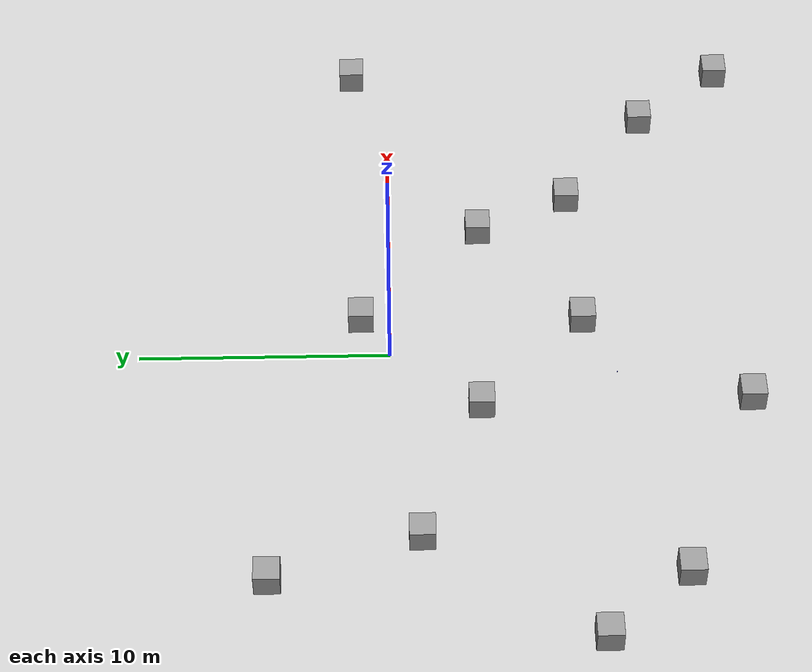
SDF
<sdf version="1.7">
 <world name="my_world">
  <model name="ground_plane">
   <static>1</static>
   <link name="link">
    <collision name="collision">
     <geometry><plane><normal>0 0 1</normal><size>100 100</size></plane></geometry>
     <surface>
      <contact><collide_bitmask>65535</collide_bitmask></contact>
      <friction><ode><mu>100</mu><mu2>50</mu2></ode></friction>
     </surface>
    </collision>
    <visual name="visual">
     <cast_shadows>0</cast_shadows>
     <geometry><plane><normal>0 0 1</normal><size>100 100</size></plane></geometry>
     <material>
      <script><uri>file://media/materials/scripts/gazebo.material</uri><name>Gazebo/Grey</name></script>
     </material>
    </visual>
   </link>
  </model>
  <model name="blue_cube_5">
   <pose>-1 -9 0.015 -2.2e-05 3e-06 0</pose>
   <link name="link">
    <inertial>
     <mass>0.005</mass>
     <inertia><ixx>1</ixx><ixy>0</ixy><ixz>0</ixz><iyy>1</iyy><iyz>0</iyz><izz>1</izz></inertia>
    </inertial>
    <collision name="collision">
     <geometry><box><size>0.03 0.03 0.03</size></box></geometry>
     <surface>
      <contact>
       <ode>
        <soft_cfm>0.001</soft_cfm>
        <soft_erp>0.2</soft_erp>
        <max_vel>0.1</max_vel>
        <min_depth>0.001</min_depth>
       </ode>
      </contact>
      <friction><ode><mu>0.01</mu><mu2>0.01</mu2></ode></friction>
     </surface>
    </collision>
    <visual name="visual">
     <geometry><box><size>0.03 0.03 0.03</size></box></geometry>
     <material><ambient>0 0 1 1</ambient><diffuse>0 0 1 1</diffuse></material>
    </visual>
   </link>
  </model>
  <model name="Untitled">
   <link name="link_0">
    <inertial>
     <mass>1</mass>
     <inertia>
      <ixx>0.166667</ixx>
      <ixy>0</ixy>
      <ixz>0</ixz>
      <iyy>0.166667</iyy>
      <iyz>0</iyz>
      <izz>0.166667</izz>
     </inertia>
    </inertial>
    <pose>-11.7361 10.376 0 0 -0 0</pose>
    <visual name="visual">
     <geometry><box><size>1 1 1</size></box></geometry>
     <material>
      <lighting>1</lighting>
      <script><uri>file://media/materials/scripts/gazebo.material</uri><name>Gazebo/Grey</name></script>
      <shader type="pixel"/>
     </material>
    </visual>
    <collision name="collision">
     <geometry><box><size>1 1 1</size></box></geometry>
     <surface>
      <friction>
       <ode><mu>1</mu><mu2>1</mu2><fdir1>0 0 0</fdir1><slip1>0</slip1><slip2>0</slip2></ode>
       <torsional>
        <coefficient>1</coefficient>
        <patch_radius>0</patch_radius>
        <surface_radius>0</surface_radius>
        <use_patch_radius>1</use_patch_radius>
        <ode><slip>0</slip></ode>
       </torsional>
      </friction>
      <bounce><restitution_coefficient>0</restitution_coefficient><threshold>1e+06</threshold></bounce>
      <contact>
       <collide_without_contact>0</collide_without_contact>
       <collide_without_contact_bitmask>1</collide_without_contact_bitmask>
       <collide_bitmask>1</collide_bitmask>
       <ode>
        <soft_cfm>0</soft_cfm>
        <soft_erp>0.2</soft_erp>
        <kp>1e+13</kp>
        <kd>1</kd>
        <max_vel>0.01</max_vel>
        <min_depth>0</min_depth>
       </ode>
       <bullet>
        <split_impulse>1</split_impulse>
        <split_impulse_penetration_threshold>-0.01</split_impulse_penetration_threshold>
        <soft_cfm>0</soft_cfm>
        <soft_erp>0.2</soft_erp>
        <kp>1e+13</kp>
        <kd>1</kd>
       </bullet>
      </contact>
     </surface>
    </collision>
   </link>
   <link name="link_1">
    <inertial>
     <mass>1</mass>
     <inertia>
      <ixx>0.166667</ixx>
      <ixy>0</ixy>
      <ixz>0</ixz>
      <iyy>0.166667</iyy>
      <iyz>0</iyz>
      <izz>0.166667</izz>
     </inertia>
    </inertial>
    <pose>-9.86873 4.59948 0 0 -0 0</pose>
    <visual name="visual">
     <geometry><box><size>1 1 1</size></box></geometry>
     <material>
      <lighting>1</lighting>
      <script><uri>file://media/materials/scripts/gazebo.material</uri><name>Gazebo/Grey</name></script>
      <shader type="pixel"/>
     </material>
    </visual>
    <collision name="collision">
     <geometry><box><size>1 1 1</size></box></geometry>
     <surface>
      <friction>
       <ode><mu>1</mu><mu2>1</mu2><fdir1>0 0 0</fdir1><slip1>0</slip1><slip2>0</slip2></ode>
       <torsional>
        <coefficient>1</coefficient>
        <patch_radius>0</patch_radius>
        <surface_radius>0</surface_radius>
        <use_patch_radius>1</use_patch_radius>
        <ode><slip>0</slip></ode>
       </torsional>
      </friction>
      <bounce><restitution_coefficient>0</restitution_coefficient><threshold>1e+06</threshold></bounce>
      <contact>
       <collide_without_contact>0</collide_without_contact>
       <collide_without_contact_bitmask>1</collide_without_contact_bitmask>
       <collide_bitmask>1</collide_bitmask>
       <ode>
        <soft_cfm>0</soft_cfm>
        <soft_erp>0.2</soft_erp>
        <kp>1e+13</kp>
        <kd>1</kd>
        <max_vel>0.01</max_vel>
        <min_depth>0</min_depth>
       </ode>
       <bullet>
        <split_impulse>1</split_impulse>
        <split_impulse_penetration_threshold>-0.01</split_impulse_penetration_threshold>
        <soft_cfm>0</soft_cfm>
        <soft_erp>0.2</soft_erp>
        <kp>1e+13</kp>
        <kd>1</kd>
       </bullet>
      </contact>
     </surface>
    </collision>
   </link>
   <link name="link_10">
    <inertial>
     <mass>1</mass>
     <inertia>
      <ixx>0.166667</ixx>
      <ixy>0</ixy>
      <ixz>0</ixz>
      <iyy>0.166667</iyy>
      <iyz>0</iyz>
      <izz>0.166667</izz>
     </inertia>
    </inertial>
    <pose>11.7248 -5.10078 0 0 -0 0</pose>
    <visual name="visual">
     <geometry><box><size>1 1 1</size></box></geometry>
     <material>
      <lighting>1</lighting>
      <script><uri>file://media/materials/scripts/gazebo.material</uri><name>Gazebo/Grey</name></script>
      <shader type="pixel"/>
     </material>
    </visual>
    <collision name="collision">
     <geometry><box><size>1 1 1</size></box></geometry>
     <surface>
      <friction>
       <ode><mu>1</mu><mu2>1</mu2><fdir1>0 0 0</fdir1><slip1>0</slip1><slip2>0</slip2></ode>
       <torsional>
        <coefficient>1</coefficient>
        <patch_radius>0</patch_radius>
        <surface_radius>0</surface_radius>
        <use_patch_radius>1</use_patch_radius>
        <ode><slip>0</slip></ode>
       </torsional>
      </friction>
      <bounce><restitution_coefficient>0</restitution_coefficient><threshold>1e+06</threshold></bounce>
      <contact>
       <collide_without_contact>0</collide_without_contact>
       <collide_without_contact_bitmask>1</collide_without_contact_bitmask>
       <collide_bitmask>1</collide_bitmask>
       <ode>
        <soft_cfm>0</soft_cfm>
        <soft_erp>0.2</soft_erp>
        <kp>1e+13</kp>
        <kd>1</kd>
        <max_vel>0.01</max_vel>
        <min_depth>0</min_depth>
       </ode>
       <bullet>
        <split_impulse>1</split_impulse>
        <split_impulse_penetration_threshold>-0.01</split_impulse_penetration_threshold>
        <soft_cfm>0</soft_cfm>
        <soft_erp>0.2</soft_erp>
        <kp>1e+13</kp>
        <kd>1</kd>
       </bullet>
      </contact>
     </surface>
    </collision>
   </link>
   <link name="link_11">
    <inertial>
     <mass>1</mass>
     <inertia>
      <ixx>0.166667</ixx>
      <ixy>0</ixy>
      <ixz>0</ixz>
      <iyy>0.166667</iyy>
      <iyz>0</iyz>
      <izz>0.166667</izz>
     </inertia>
    </inertial>
    <pose>-3.47257 -8.45059 0 0 -0 0</pose>
    <visual name="visual">
     <geometry><box><size>1 1 1</size></box></geometry>
     <material>
      <lighting>1</lighting>
      <script><uri>file://media/materials/scripts/gazebo.material</uri><name>Gazebo/Grey</name></script>
      <shader type="pixel"/>
     </material>
    </visual>
    <collision name="collision">
     <geometry><box><size>1 1 1</size></box></geometry>
     <surface>
      <friction>
       <ode><mu>1</mu><mu2>1</mu2><fdir1>0 0 0</fdir1><slip1>0</slip1><slip2>0</slip2></ode>
       <torsional>
        <coefficient>1</coefficient>
        <patch_radius>0</patch_radius>
        <surface_radius>0</surface_radius>
        <use_patch_radius>1</use_patch_radius>
        <ode><slip>0</slip></ode>
       </torsional>
      </friction>
      <bounce><restitution_coefficient>0</restitution_coefficient><threshold>1e+06</threshold></bounce>
      <contact>
       <collide_without_contact>0</collide_without_contact>
       <collide_without_contact_bitmask>1</collide_without_contact_bitmask>
       <collide_bitmask>1</collide_bitmask>
       <ode>
        <soft_cfm>0</soft_cfm>
        <soft_erp>0.2</soft_erp>
        <kp>1e+13</kp>
        <kd>1</kd>
        <max_vel>0.01</max_vel>
        <min_depth>0</min_depth>
       </ode>
       <bullet>
        <split_impulse>1</split_impulse>
        <split_impulse_penetration_threshold>-0.01</split_impulse_penetration_threshold>
        <soft_cfm>0</soft_cfm>
        <soft_erp>0.2</soft_erp>
        <kp>1e+13</kp>
        <kd>1</kd>
       </bullet>
      </contact>
     </surface>
    </collision>
   </link>
   <link name="link_12">
    <inertial>
     <mass>1</mass>
     <inertia>
      <ixx>0.166667</ixx>
      <ixy>0</ixy>
      <ixz>0</ixz>
      <iyy>0.166667</iyy>
      <iyz>0</iyz>
      <izz>0.166667</izz>
     </inertia>
    </inertial>
    <pose>14.5027 -8.59174 0 0 -0 0</pose>
    <visual name="visual">
     <geometry><box><size>1 1 1</size></box></geometry>
     <material>
      <lighting>1</lighting>
      <script><uri>file://media/materials/scripts/gazebo.material</uri><name>Gazebo/Grey</name></script>
      <shader type="pixel"/>
     </material>
    </visual>
    <collision name="collision">
     <geometry><box><size>1 1 1</size></box></geometry>
     <surface>
      <friction>
       <ode><mu>1</mu><mu2>1</mu2><fdir1>0 0 0</fdir1><slip1>0</slip1><slip2>0</slip2></ode>
       <torsional>
        <coefficient>1</coefficient>
        <patch_radius>0</patch_radius>
        <surface_radius>0</surface_radius>
        <use_patch_radius>1</use_patch_radius>
        <ode><slip>0</slip></ode>
       </torsional>
      </friction>
      <bounce><restitution_coefficient>0</restitution_coefficient><threshold>1e+06</threshold></bounce>
      <contact>
       <collide_without_contact>0</collide_without_contact>
       <collide_without_contact_bitmask>1</collide_without_contact_bitmask>
       <collide_bitmask>1</collide_bitmask>
       <ode>
        <soft_cfm>0</soft_cfm>
        <soft_erp>0.2</soft_erp>
        <kp>1e+13</kp>
        <kd>1</kd>
        <max_vel>0.01</max_vel>
        <min_depth>0</min_depth>
       </ode>
       <bullet>
        <split_impulse>1</split_impulse>
        <split_impulse_penetration_threshold>-0.01</split_impulse_penetration_threshold>
        <soft_cfm>0</soft_cfm>
        <soft_erp>0.2</soft_erp>
        <kp>1e+13</kp>
        <kd>1</kd>
       </bullet>
      </contact>
     </surface>
    </collision>
   </link>
   <link name="link_2">
    <inertial>
     <mass>1</mass>
     <inertia>
      <ixx>0.166667</ixx>
      <ixy>0</ixy>
      <ixz>0</ixz>
      <iyy>0.166667</iyy>
      <iyz>0</iyz>
      <izz>0.166667</izz>
     </inertia>
    </inertial>
    <pose>0.764529 6.87658 0 0 -0 0</pose>
    <visual name="visual">
     <geometry><box><size>1 1 1</size></box></geometry>
     <material>
      <lighting>1</lighting>
      <script><uri>file://media/materials/scripts/gazebo.material</uri><name>Gazebo/Grey</name></script>
      <shader type="pixel"/>
     </material>
    </visual>
    <collision name="collision">
     <geometry><box><size>1 1 1</size></box></geometry>
     <surface>
      <friction>
       <ode><mu>1</mu><mu2>1</mu2><fdir1>0 0 0</fdir1><slip1>0</slip1><slip2>0</slip2></ode>
       <torsional>
        <coefficient>1</coefficient>
        <patch_radius>0</patch_radius>
        <surface_radius>0</surface_radius>
        <use_patch_radius>1</use_patch_radius>
        <ode><slip>0</slip></ode>
       </torsional>
      </friction>
      <bounce><restitution_coefficient>0</restitution_coefficient><threshold>1e+06</threshold></bounce>
      <contact>
       <collide_without_contact>0</collide_without_contact>
       <collide_without_contact_bitmask>1</collide_without_contact_bitmask>
       <collide_bitmask>1</collide_bitmask>
       <ode>
        <soft_cfm>0</soft_cfm>
        <soft_erp>0.2</soft_erp>
        <kp>1e+13</kp>
        <kd>1</kd>
        <max_vel>0.01</max_vel>
        <min_depth>0</min_depth>
       </ode>
       <bullet>
        <split_impulse>1</split_impulse>
        <split_impulse_penetration_threshold>-0.01</split_impulse_penetration_threshold>
        <soft_cfm>0</soft_cfm>
        <soft_erp>0.2</soft_erp>
        <kp>1e+13</kp>
        <kd>1</kd>
       </bullet>
      </contact>
     </surface>
    </collision>
   </link>
   <link name="link_3">
    <inertial>
     <mass>1</mass>
     <inertia>
      <ixx>0.166667</ixx>
      <ixy>0</ixy>
      <ixz>0</ixz>
      <iyy>0.166667</iyy>
      <iyz>0</iyz>
      <izz>0.166667</izz>
     </inertia>
    </inertial>
    <pose>14.5365 7.25535 0 0 -0 0</pose>
    <visual name="visual">
     <geometry><box><size>1 1 1</size></box></geometry>
     <material>
      <lighting>1</lighting>
      <script><uri>file://media/materials/scripts/gazebo.material</uri><name>Gazebo/Grey</name></script>
      <shader type="pixel"/>
     </material>
    </visual>
    <collision name="collision">
     <geometry><box><size>1 1 1</size></box></geometry>
     <surface>
      <friction>
       <ode><mu>1</mu><mu2>1</mu2><fdir1>0 0 0</fdir1><slip1>0</slip1><slip2>0</slip2></ode>
       <torsional>
        <coefficient>1</coefficient>
        <patch_radius>0</patch_radius>
        <surface_radius>0</surface_radius>
        <use_patch_radius>1</use_patch_radius>
        <ode><slip>0</slip></ode>
       </torsional>
      </friction>
      <bounce><restitution_coefficient>0</restitution_coefficient><threshold>1e+06</threshold></bounce>
      <contact>
       <collide_without_contact>0</collide_without_contact>
       <collide_without_contact_bitmask>1</collide_without_contact_bitmask>
       <collide_bitmask>1</collide_bitmask>
       <ode>
        <soft_cfm>0</soft_cfm>
        <soft_erp>0.2</soft_erp>
        <kp>1e+13</kp>
        <kd>1</kd>
        <max_vel>0.01</max_vel>
        <min_depth>0</min_depth>
       </ode>
       <bullet>
        <split_impulse>1</split_impulse>
        <split_impulse_penetration_threshold>-0.01</split_impulse_penetration_threshold>
        <soft_cfm>0</soft_cfm>
        <soft_erp>0.2</soft_erp>
        <kp>1e+13</kp>
        <kd>1</kd>
       </bullet>
      </contact>
     </surface>
    </collision>
   </link>
   <link name="link_4">
    <inertial>
     <mass>1</mass>
     <inertia>
      <ixx>0.166667</ixx>
      <ixy>0</ixy>
      <ixz>0</ixz>
      <iyy>0.166667</iyy>
      <iyz>0</iyz>
      <izz>0.166667</izz>
     </inertia>
    </inertial>
    <pose>-3.6643 2.16941 0 0 -0 0</pose>
    <visual name="visual">
     <geometry><box><size>1 1 1</size></box></geometry>
     <material>
      <lighting>1</lighting>
      <script><uri>file://media/materials/scripts/gazebo.material</uri><name>Gazebo/Grey</name></script>
      <shader type="pixel"/>
     </material>
    </visual>
    <collision name="collision">
     <geometry><box><size>1 1 1</size></box></geometry>
     <surface>
      <friction>
       <ode><mu>1</mu><mu2>1</mu2><fdir1>0 0 0</fdir1><slip1>0</slip1><slip2>0</slip2></ode>
       <torsional>
        <coefficient>1</coefficient>
        <patch_radius>0</patch_radius>
        <surface_radius>0</surface_radius>
        <use_patch_radius>1</use_patch_radius>
        <ode><slip>0</slip></ode>
       </torsional>
      </friction>
      <bounce><restitution_coefficient>0</restitution_coefficient><threshold>1e+06</threshold></bounce>
      <contact>
       <collide_without_contact>0</collide_without_contact>
       <collide_without_contact_bitmask>1</collide_without_contact_bitmask>
       <collide_bitmask>1</collide_bitmask>
       <ode>
        <soft_cfm>0</soft_cfm>
        <soft_erp>0.2</soft_erp>
        <kp>1e+13</kp>
        <kd>1</kd>
        <max_vel>0.01</max_vel>
        <min_depth>0</min_depth>
       </ode>
       <bullet>
        <split_impulse>1</split_impulse>
        <split_impulse_penetration_threshold>-0.01</split_impulse_penetration_threshold>
        <soft_cfm>0</soft_cfm>
        <soft_erp>0.2</soft_erp>
        <kp>1e+13</kp>
        <kd>1</kd>
       </bullet>
      </contact>
     </surface>
    </collision>
   </link>
   <link name="link_5">
    <inertial>
     <mass>1</mass>
     <inertia>
      <ixx>0.166667</ixx>
      <ixy>0</ixy>
      <ixz>0</ixz>
      <iyy>0.166667</iyy>
      <iyz>0</iyz>
      <izz>0.166667</izz>
     </inertia>
    </inertial>
    <pose>5.45574 2.04349 0 0 -0 0</pose>
    <visual name="visual">
     <geometry><box><size>1 1 1</size></box></geometry>
     <material>
      <lighting>1</lighting>
      <script><uri>file://media/materials/scripts/gazebo.material</uri><name>Gazebo/Grey</name></script>
      <shader type="pixel"/>
     </material>
    </visual>
    <collision name="collision">
     <geometry><box><size>1 1 1</size></box></geometry>
     <surface>
      <friction>
       <ode><mu>1</mu><mu2>1</mu2><fdir1>0 0 0</fdir1><slip1>0</slip1><slip2>0</slip2></ode>
       <torsional>
        <coefficient>1</coefficient>
        <patch_radius>0</patch_radius>
        <surface_radius>0</surface_radius>
        <use_patch_radius>1</use_patch_radius>
        <ode><slip>0</slip></ode>
       </torsional>
      </friction>
      <bounce><restitution_coefficient>0</restitution_coefficient><threshold>1e+06</threshold></bounce>
      <contact>
       <collide_without_contact>0</collide_without_contact>
       <collide_without_contact_bitmask>1</collide_without_contact_bitmask>
       <collide_bitmask>1</collide_bitmask>
       <ode>
        <soft_cfm>0</soft_cfm>
        <soft_erp>0.2</soft_erp>
        <kp>1e+13</kp>
        <kd>1</kd>
        <max_vel>0.01</max_vel>
        <min_depth>0</min_depth>
       </ode>
       <bullet>
        <split_impulse>1</split_impulse>
        <split_impulse_penetration_threshold>-0.01</split_impulse_penetration_threshold>
        <soft_cfm>0</soft_cfm>
        <soft_erp>0.2</soft_erp>
        <kp>1e+13</kp>
        <kd>1</kd>
       </bullet>
      </contact>
     </surface>
    </collision>
   </link>
   <link name="link_6">
    <inertial>
     <mass>1</mass>
     <inertia>
      <ixx>0.166667</ixx>
      <ixy>0</ixy>
      <ixz>0</ixz>
      <iyy>0.166667</iyy>
      <iyz>0</iyz>
      <izz>0.166667</izz>
     </inertia>
    </inertial>
    <pose>7.19325 -1.71375 0 0 -0 0</pose>
    <visual name="visual">
     <geometry><box><size>1 1 1</size></box></geometry>
     <material>
      <lighting>1</lighting>
      <script><uri>file://media/materials/scripts/gazebo.material</uri><name>Gazebo/Grey</name></script>
      <shader type="pixel"/>
     </material>
    </visual>
    <collision name="collision">
     <geometry><box><size>1 1 1</size></box></geometry>
     <surface>
      <friction>
       <ode><mu>1</mu><mu2>1</mu2><fdir1>0 0 0</fdir1><slip1>0</slip1><slip2>0</slip2></ode>
       <torsional>
        <coefficient>1</coefficient>
        <patch_radius>0</patch_radius>
        <surface_radius>0</surface_radius>
        <use_patch_radius>1</use_patch_radius>
        <ode><slip>0</slip></ode>
       </torsional>
      </friction>
      <bounce><restitution_coefficient>0</restitution_coefficient><threshold>1e+06</threshold></bounce>
      <contact>
       <collide_without_contact>0</collide_without_contact>
       <collide_without_contact_bitmask>1</collide_without_contact_bitmask>
       <collide_bitmask>1</collide_bitmask>
       <ode>
        <soft_cfm>0</soft_cfm>
        <soft_erp>0.2</soft_erp>
        <kp>1e+13</kp>
        <kd>1</kd>
        <max_vel>0.01</max_vel>
        <min_depth>0</min_depth>
       </ode>
       <bullet>
        <split_impulse>1</split_impulse>
        <split_impulse_penetration_threshold>-0.01</split_impulse_penetration_threshold>
        <soft_cfm>0</soft_cfm>
        <soft_erp>0.2</soft_erp>
        <kp>1e+13</kp>
        <kd>1</kd>
       </bullet>
      </contact>
     </surface>
    </collision>
   </link>
   <link name="link_7">
    <inertial>
     <mass>1</mass>
     <inertia>
      <ixx>0.166667</ixx>
      <ixy>0</ixy>
      <ixz>0</ixz>
      <iyy>0.166667</iyy>
      <iyz>0</iyz>
      <izz>0.166667</izz>
     </inertia>
    </inertial>
    <pose>0.605863 -2.01965 0 0 -0 0</pose>
    <visual name="visual">
     <geometry><box><size>1 1 1</size></box></geometry>
     <material>
      <lighting>1</lighting>
      <script><uri>file://media/materials/scripts/gazebo.material</uri><name>Gazebo/Grey</name></script>
      <shader type="pixel"/>
     </material>
    </visual>
    <collision name="collision">
     <geometry><box><size>1 1 1</size></box></geometry>
     <surface>
      <friction>
       <ode><mu>1</mu><mu2>1</mu2><fdir1>0 0 0</fdir1><slip1>0</slip1><slip2>0</slip2></ode>
       <torsional>
        <coefficient>1</coefficient>
        <patch_radius>0</patch_radius>
        <surface_radius>0</surface_radius>
        <use_patch_radius>1</use_patch_radius>
        <ode><slip>0</slip></ode>
       </torsional>
      </friction>
      <bounce><restitution_coefficient>0</restitution_coefficient><threshold>1e+06</threshold></bounce>
      <contact>
       <collide_without_contact>0</collide_without_contact>
       <collide_without_contact_bitmask>1</collide_without_contact_bitmask>
       <collide_bitmask>1</collide_bitmask>
       <ode>
        <soft_cfm>0</soft_cfm>
        <soft_erp>0.2</soft_erp>
        <kp>1e+13</kp>
        <kd>1</kd>
        <max_vel>0.01</max_vel>
        <min_depth>0</min_depth>
       </ode>
       <bullet>
        <split_impulse>1</split_impulse>
        <split_impulse_penetration_threshold>-0.01</split_impulse_penetration_threshold>
        <soft_cfm>0</soft_cfm>
        <soft_erp>0.2</soft_erp>
        <kp>1e+13</kp>
        <kd>1</kd>
       </bullet>
      </contact>
     </surface>
    </collision>
   </link>
   <link name="link_8">
    <inertial>
     <mass>1</mass>
     <inertia>
      <ixx>0.166667</ixx>
      <ixy>0</ixy>
      <ixz>0</ixz>
      <iyy>0.166667</iyy>
      <iyz>0</iyz>
      <izz>0.166667</izz>
     </inertia>
    </inertial>
    <pose>-14.4058 -2.10305 0 0 -0 0</pose>
    <visual name="visual">
     <geometry><box><size>1 1 1</size></box></geometry>
     <material>
      <lighting>1</lighting>
      <script><uri>file://media/materials/scripts/gazebo.material</uri><name>Gazebo/Grey</name></script>
      <shader type="pixel"/>
     </material>
    </visual>
    <collision name="collision">
     <geometry><box><size>1 1 1</size></box></geometry>
     <surface>
      <friction>
       <ode><mu>1</mu><mu2>1</mu2><fdir1>0 0 0</fdir1><slip1>0</slip1><slip2>0</slip2></ode>
       <torsional>
        <coefficient>1</coefficient>
        <patch_radius>0</patch_radius>
        <surface_radius>0</surface_radius>
        <use_patch_radius>1</use_patch_radius>
        <ode><slip>0</slip></ode>
       </torsional>
      </friction>
      <bounce><restitution_coefficient>0</restitution_coefficient><threshold>1e+06</threshold></bounce>
      <contact>
       <collide_without_contact>0</collide_without_contact>
       <collide_without_contact_bitmask>1</collide_without_contact_bitmask>
       <collide_bitmask>1</collide_bitmask>
       <ode>
        <soft_cfm>0</soft_cfm>
        <soft_erp>0.2</soft_erp>
        <kp>1e+13</kp>
        <kd>1</kd>
        <max_vel>0.01</max_vel>
        <min_depth>0</min_depth>
       </ode>
       <bullet>
        <split_impulse>1</split_impulse>
        <split_impulse_penetration_threshold>-0.01</split_impulse_penetration_threshold>
        <soft_cfm>0</soft_cfm>
        <soft_erp>0.2</soft_erp>
        <kp>1e+13</kp>
        <kd>1</kd>
       </bullet>
      </contact>
     </surface>
    </collision>
   </link>
   <link name="link_9">
    <inertial>
     <mass>1</mass>
     <inertia>
      <ixx>0.166667</ixx>
      <ixy>0</ixy>
      <ixz>0</ixz>
      <iyy>0.166667</iyy>
      <iyz>0</iyz>
      <izz>0.166667</izz>
     </inertia>
    </inertial>
    <pose>-11.6359 -5.34072 0 0 -0 0</pose>
    <visual name="visual">
     <geometry><box><size>1 1 1</size></box></geometry>
     <material>
      <lighting>1</lighting>
      <script><uri>file://media/materials/scripts/gazebo.material</uri><name>Gazebo/Grey</name></script>
      <shader type="pixel"/>
     </material>
    </visual>
    <collision name="collision">
     <geometry><box><size>1 1 1</size></box></geometry>
     <surface>
      <friction>
       <ode><mu>1</mu><mu2>1</mu2><fdir1>0 0 0</fdir1><slip1>0</slip1><slip2>0</slip2></ode>
       <torsional>
        <coefficient>1</coefficient>
        <patch_radius>0</patch_radius>
        <surface_radius>0</surface_radius>
        <use_patch_radius>1</use_patch_radius>
        <ode><slip>0</slip></ode>
       </torsional>
      </friction>
      <bounce><restitution_coefficient>0</restitution_coefficient><threshold>1e+06</threshold></bounce>
      <contact>
       <collide_without_contact>0</collide_without_contact>
       <collide_without_contact_bitmask>1</collide_without_contact_bitmask>
       <collide_bitmask>1</collide_bitmask>
       <ode>
        <soft_cfm>0</soft_cfm>
        <soft_erp>0.2</soft_erp>
        <kp>1e+13</kp>
        <kd>1</kd>
        <max_vel>0.01</max_vel>
        <min_depth>0</min_depth>
       </ode>
       <bullet>
        <split_impulse>1</split_impulse>
        <split_impulse_penetration_threshold>-0.01</split_impulse_penetration_threshold>
        <soft_cfm>0</soft_cfm>
        <soft_erp>0.2</soft_erp>
        <kp>1e+13</kp>
        <kd>1</kd>
       </bullet>
      </contact>
     </surface>
    </collision>
   </link>
   <static>0</static>
   <pose>0.968798 -5.71233 0.5 0 -0 0</pose>
  </model>
 </world>
</sdf>
